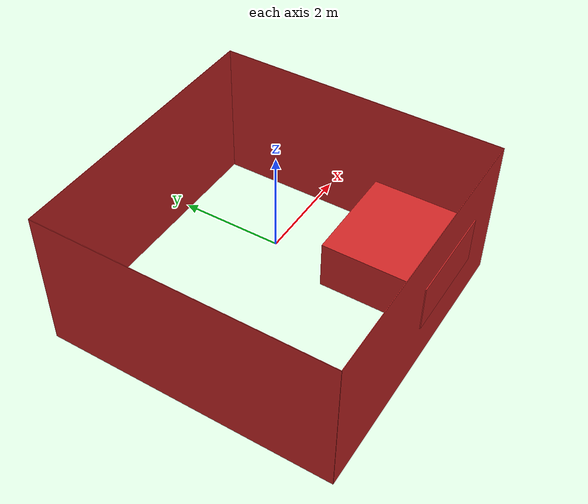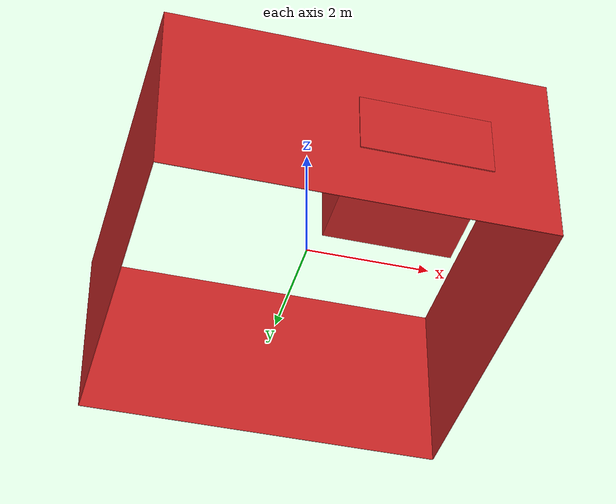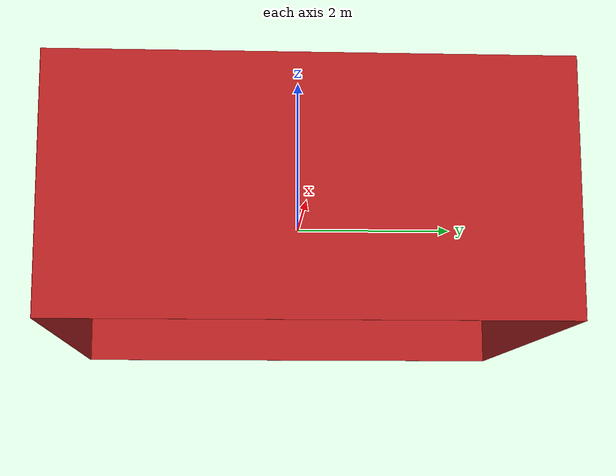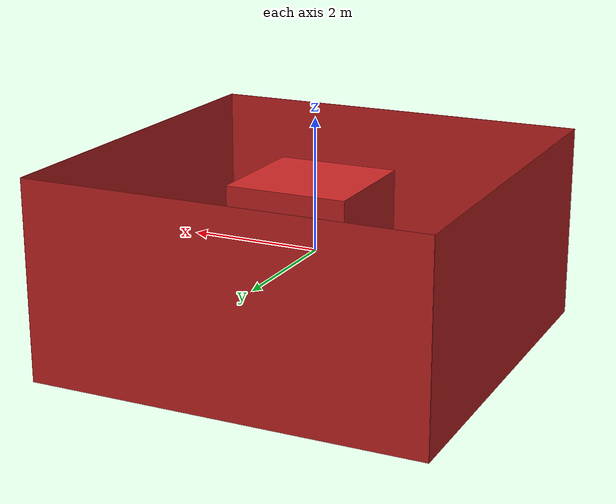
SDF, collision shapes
<sdf version='1.5'>
    <!-- Draw Circle -->
    <model name='ros_symbol'>
      <static>1</static>
      <link name='symbol'>

      <visual name="obs_shoerack">
      <pose>2 2 0 0 0 0</pose>
	    <geometry>
          <mesh>
            <uri>model://turtlebot3_world/meshes/aws_ShoeRack_01_visual.DAE</uri>
          </mesh>
        </geometry>
      <meta> <layer> 1 </layer></meta>
	</visual>

	<visual name="obs_trash">
	<pose>-2 -2 0 0 0 0</pose>
	<geometry>
          <mesh>
            <uri>model://turtlebot3_world/meshes/aws_Trash_01_visual.DAE</uri>
          </mesh>
        </geometry>
      	<meta> <layer> 1 </layer></meta>
	</visual>

	<visual name="obs_chair1">
      <pose>0.8 0 0 0 0 0</pose>
	    <geometry>
          <mesh>
            <uri>model://turtlebot3_world/meshes/aws_ChairD_01_visual.DAE</uri>
          </mesh>
        </geometry>
      <meta> <layer> 1 </layer></meta>
	</visual>

	<visual name="obs_chair2">
      <pose>-2 1 0 0 0 0</pose>
	    <geometry>
          <mesh>
            <uri>model://turtlebot3_world/meshes/aws_ChairD_01_visual.DAE</uri>
          </mesh>
        </geometry>
      <meta> <layer> 1 </layer></meta>
	</visual>

      <visual name="obs_table1">
      <pose>0 2 0 0 0 0</pose>
	    <geometry>
          <mesh>
            <uri>model://turtlebot3_world/meshes/aws_CoffeeTable_01_visual.DAE</uri>
          </mesh>
        </geometry>
      <meta> <layer> 1 </layer></meta>
	</visual>

	<collision name="obs_bed">
      	<pose>1 -2 0 0 0 0</pose>
        <geometry>
          <box>
            <size>2.05 2.05 1.0</size>
          </box>
        </geometry>
        <max_contacts>10</max_contacts>
          <surface>
            <bounce/>
            <friction>
              <ode/>
            </friction>
            <contact>
              <ode/>
            </contact>
          </surface>
      </collision>

	<visual name="obs_bed">
	<pose>1 -2 0 0 0 -3.14</pose>
	    <geometry>
          <mesh>
            <uri>model://turtlebot3_world/meshes/aws_Bed_01_visual.DAE</uri>
          </mesh>
        </geometry>
      <meta> <layer> 1 </layer></meta>
	</visual>

      	<visual name='goal_1'>
          <pose>-2 2 0 0 0 0</pose>
          <geometry>
            <cylinder>
              <radius>0.08</radius>
              <length>0.01</length>
            </cylinder>
          </geometry>
          <material>
            <script>
              <uri>file://media/materials/scripts/gazebo.material</uri>
              <name>Gazebo/Red</name>
            </script>
          </material>
        </visual>

        <visual name='goal_2'>
          <pose>-0.1 -0.7 0 0 0 0</pose>
          <geometry>
            <cylinder>
              <radius>0.08</radius>
              <length>0.01</length>
            </cylinder>
          </geometry>
          <material>
            <script>
              <uri>file://media/materials/scripts/gazebo.material</uri>
              <name>Gazebo/Red</name>
            </script>
          </material>
        </visual>

        <visual name='goal_3'>
          <pose>-1 -1 0 0 0 0</pose>
          <geometry>
            <cylinder>
              <radius>0.08</radius>
              <length>0.01</length>
            </cylinder>
          </geometry>
          <material>
            <script>
              <uri>file://media/materials/scripts/gazebo.material</uri>
              <name>Gazebo/Red</name>
            </script>
          </material>
        </visual>

	<!-- Draw Walls -->
      	<collision name="wall_1">
      	<pose>3 0 0 0 0 0</pose>
        <geometry>
          <box>
            <size>0.01 6.0 3.0</size>
          </box>
        </geometry>
        <max_contacts>10</max_contacts>
          <surface>
            <bounce/>
            <friction>
              <ode/>
            </friction>
            <contact>
              <ode/>
            </contact>
          </surface>
      </collision>

      <visual name="wall_1">
      <pose>3 0 0 0 0 0</pose>
        <geometry>
          <box>
            <size>0.01 6.0 3.0</size>
          </box>
        </geometry>
        <material>
            <script>
              <uri>file://media/materials/scripts/gazebo.material</uri>
              <name>Gazebo/White</name>
            </script>
        </material>
      </visual>

      <collision name="wall_2">
      	<pose>-3 0 0 0 0 0</pose>
        <geometry>
          <box>
            <size>0.01 6.0 3.0</size>
          </box>
        </geometry>
        <max_contacts>10</max_contacts>
          <surface>
            <bounce/>
            <friction>
              <ode/>
            </friction>
            <contact>
              <ode/>
            </contact>
          </surface>
      </collision>

      <visual name="wall_2">
      	<pose>-3 0 0 0 0 0</pose>
        <geometry>
          <box>
            <size>0.01 6.0 3.0</size>
          </box>
        </geometry>
        <material>
            <script>
              <uri>file://media/materials/scripts/gazebo.material</uri>
              <name>Gazebo/White</name>
            </script>
        </material>
      </visual>

      <collision name="wall_3">
      	<pose>0 3 0 0 0 0</pose>
        <geometry>
          <box>
            <size>6.0 0.01 3.0</size>
          </box>
        </geometry>
        <max_contacts>10</max_contacts>
          <surface>
            <bounce/>
            <friction>
              <ode/>
            </friction>
            <contact>
              <ode/>
            </contact>
          </surface>
      </collision>

      <visual name="wall_3">
      	<pose>0 3 0 0 0 0</pose>
        <geometry>
          <box>
            <size>6.0 0.01 3.0</size>
          </box>
        </geometry>
        <material>
            <script>
              <uri>file://media/materials/scripts/gazebo.material</uri>
              <name>Gazebo/White</name>
            </script>
        </material>
      </visual>

      <collision name="wall_4">
      	<pose>0 -3 0 0 0 0</pose>
        <geometry>
          <box>
            <size>6.0 0.01 3.0</size>
          </box>
        </geometry>
        <max_contacts>10</max_contacts>
          <surface>
            <bounce/>
            <friction>
              <ode/>
            </friction>
            <contact>
              <ode/>
            </contact>
          </surface>
      </collision>

      <visual name="wall_4">
      	<pose>0 -3 0 0 0 0</pose>
        <geometry>
          <box>
            <size>6.0 0.01 3.0</size>
          </box>
        </geometry>
        <material>
            <script>
              <uri>file://media/materials/scripts/gazebo.material</uri>
              <name>Gazebo/White</name>
            </script>
        </material>
      </visual>

    </link>
  </model>
</sdf>
